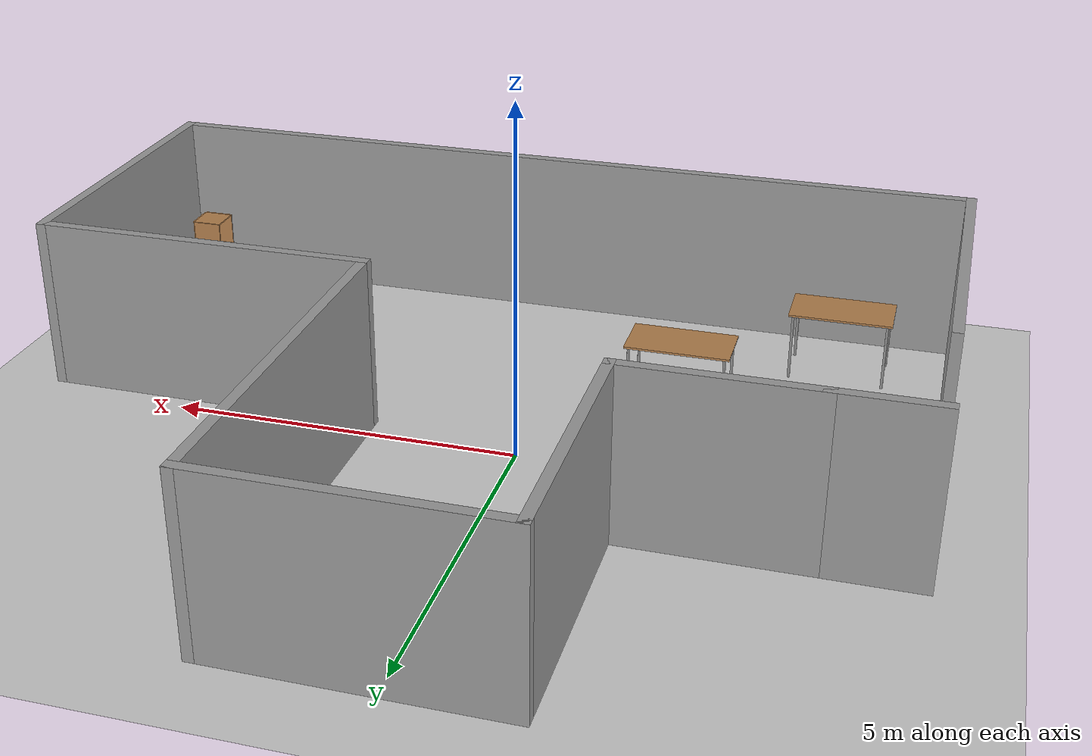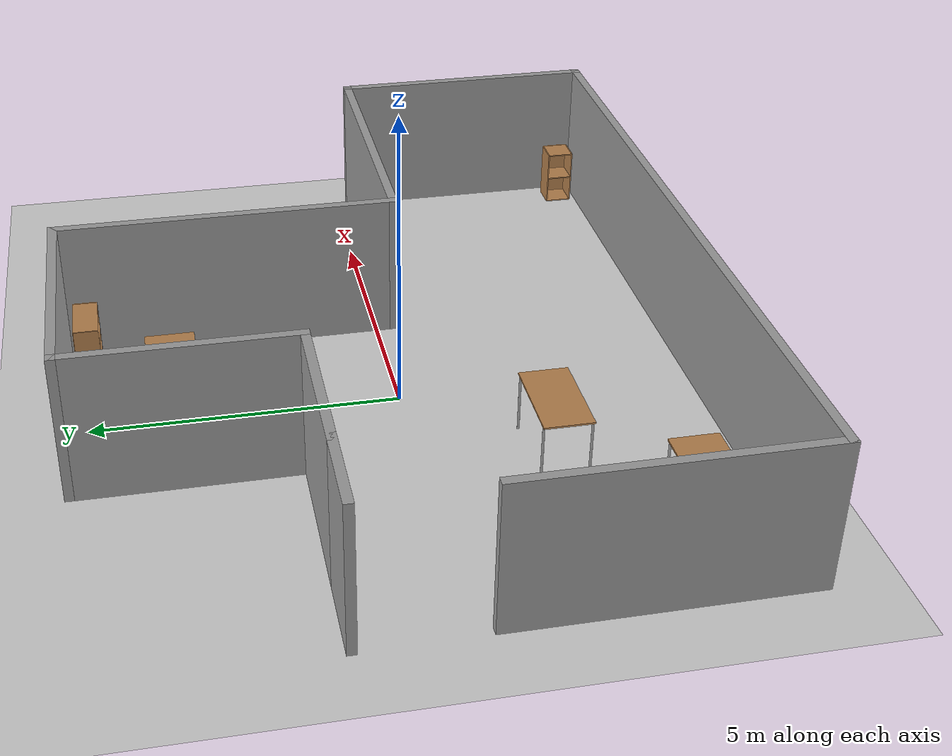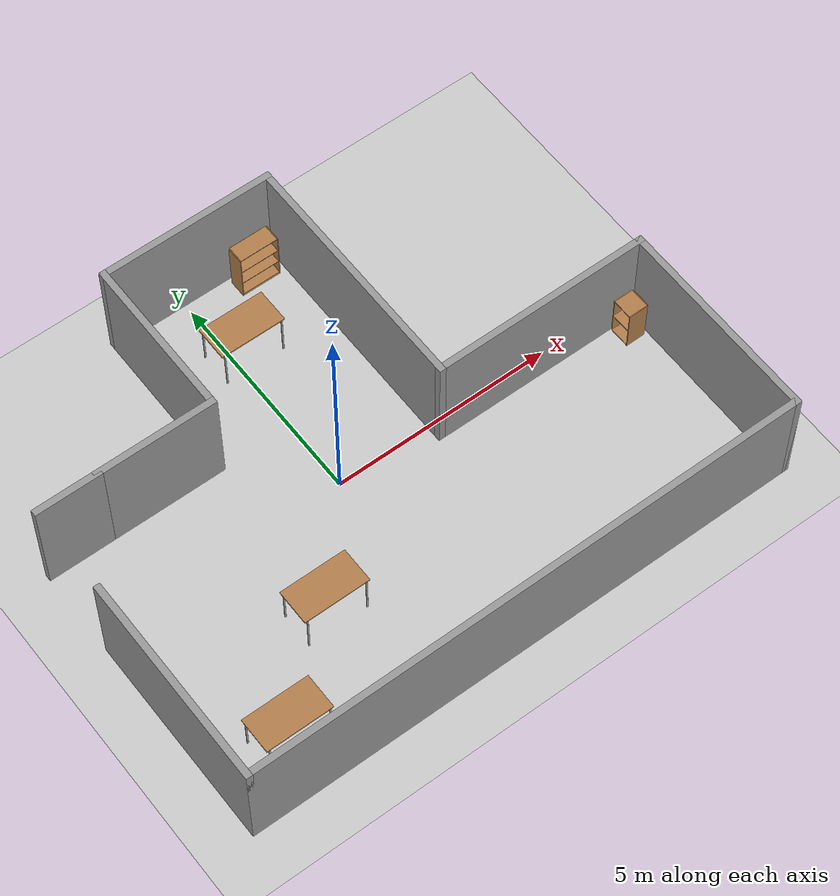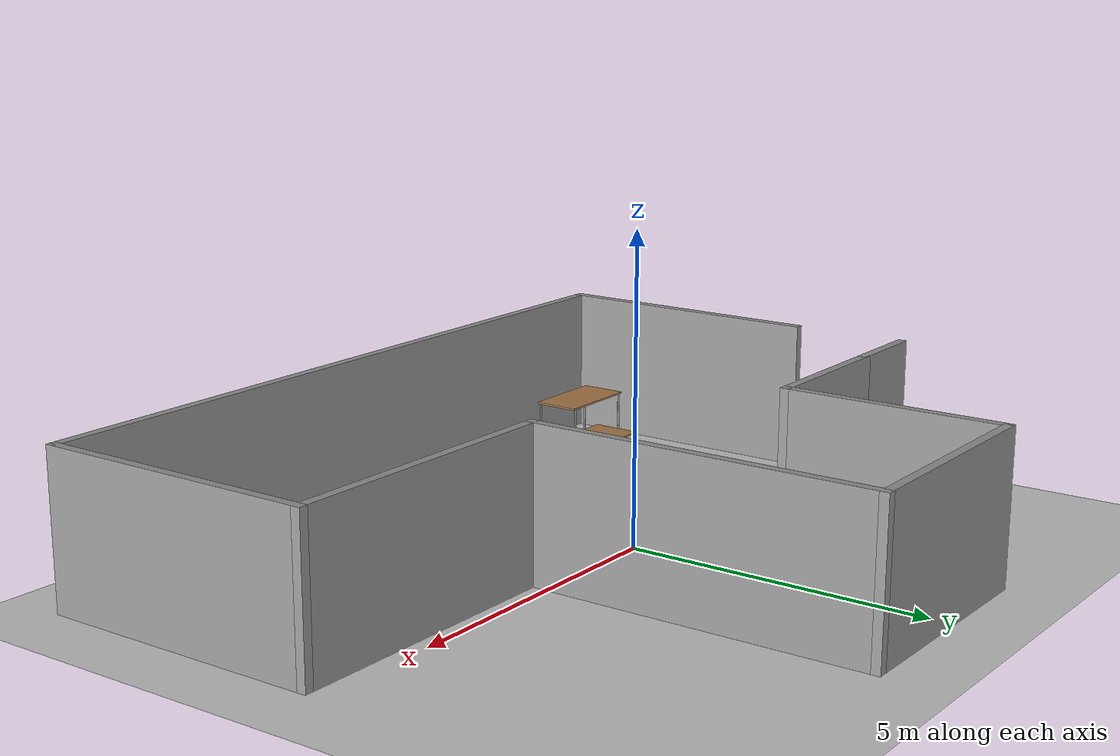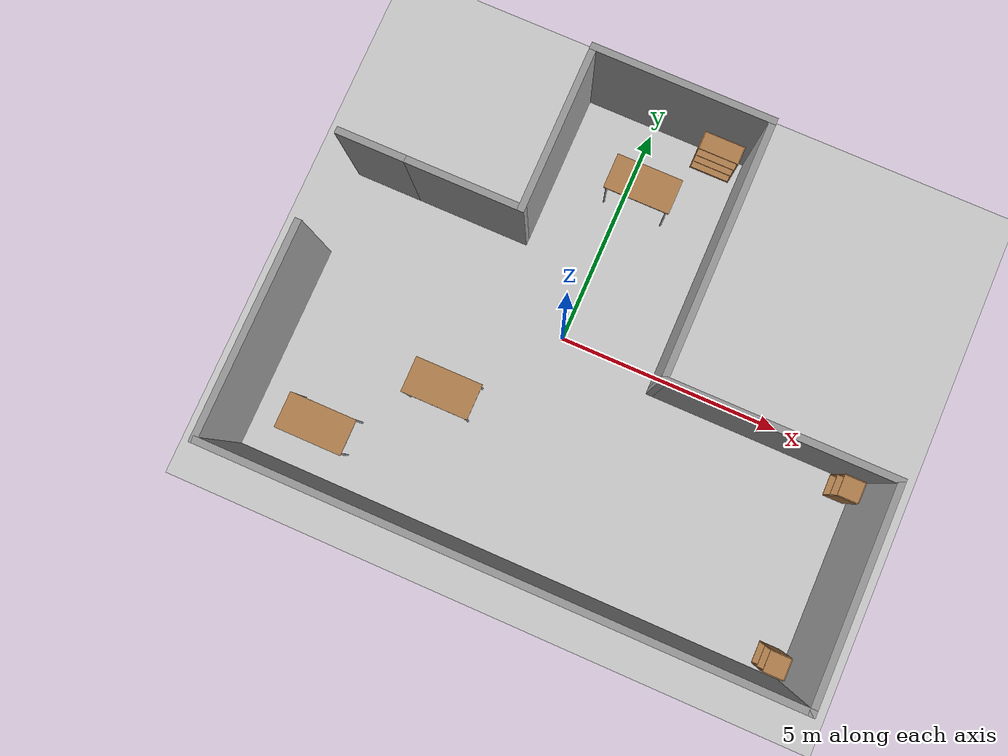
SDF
<sdf version="1.7">
 <world name="default">
  <light name="sun" type="directional">
   <pose>0 0 10 0 -0 0</pose>
   <diffuse>0.8 0.8 0.8 1</diffuse>
   <specular>0.2 0.2 0.2 1</specular>
   <attenuation>
    <range>1000</range>
    <constant>0.9</constant>
    <linear>0.01</linear>
    <quadratic>0.001</quadratic>
   </attenuation>
   <direction>-0.5 0.1 -0.9</direction>
   <spot><inner_angle>0</inner_angle><outer_angle>0</outer_angle><falloff>0</falloff></spot>
  </light>
  <model name="ground_plane">
   <static>1</static>
   <link name="ground_plane_link">
    <collision name="collision">
     <geometry><plane><normal>0 0 1</normal><size>100 100</size></plane></geometry>
     <surface><friction><ode><mu>100</mu><mu2>50</mu2></ode></friction></surface>
    </collision>
    <visual name="visual">
     <cast_shadows>0</cast_shadows>
     <geometry><plane><normal>0 0 1</normal><size>100 100</size></plane></geometry>
     <material>
      <script><uri>file://media/materials/scripts/gazebo.material</uri><name>Gazebo/Grey</name></script>
     </material>
    </visual>
   </link>
  </model>
  <gravity>0 0 -9.8</gravity>
  <magnetic_field>6e-06 2.3e-05 -4.2e-05</magnetic_field>
  <atmosphere type="adiabatic"/>
  <physics type="ode">
   <max_step_size>0.001</max_step_size>
   <real_time_factor>1</real_time_factor>
   <real_time_update_rate>1000</real_time_update_rate>
  </physics>
  <scene><ambient>0.4 0.4 0.4 1</ambient><background>0.7 0.7 0.7 1</background><shadows>1</shadows></scene>
  <audio><device>default</device></audio>
  <spherical_coordinates>
   <surface_model>EARTH_WGS84</surface_model>
   <latitude_deg>0</latitude_deg>
   <longitude_deg>0</longitude_deg>
   <elevation>0</elevation>
   <heading_deg>0</heading_deg>
  </spherical_coordinates>
  <model name="house1">
   <pose>0.75004 0.19 0 0 -0 0</pose>
   <link name="Wall_0">
    <collision name="Wall_0_Collision">
     <geometry><box><size>4.75 0.15 2.5</size></box></geometry>
     <pose>0 0 1.25 0 -0 0</pose>
    </collision>
    <visual name="Wall_0_Visual">
     <pose>0 0 1.25 0 -0 0</pose>
     <geometry><box><size>4.75 0.15 2.5</size></box></geometry>
     <material>
      <script><uri>file://media/materials/scripts/gazebo.material</uri><name>Gazebo/Grey</name></script>
      <ambient>1 1 1 1</ambient>
     </material>
     <meta><layer>0</layer></meta>
    </visual>
    <pose>-6.29004 -2.8 0 0 -0 -1.5708</pose>
   </link>
   <link name="Wall_1">
    <collision name="Wall_1_Collision">
     <geometry><box><size>12.75 0.15 2.5</size></box></geometry>
     <pose>0 0 1.25 0 -0 0</pose>
    </collision>
    <visual name="Wall_1_Visual">
     <pose>0 0 1.25 0 -0 0</pose>
     <geometry><box><size>12.75 0.15 2.5</size></box></geometry>
     <material>
      <script><uri>file://media/materials/scripts/gazebo.material</uri><name>Gazebo/Grey</name></script>
      <ambient>1 1 1 1</ambient>
     </material>
     <meta><layer>0</layer></meta>
    </visual>
    <pose>0.009962 -5.1 0 0 -0 0</pose>
   </link>
   <link name="Wall_2">
    <collision name="Wall_2_Collision">
     <geometry><box><size>4.75 0.15 2.5</size></box></geometry>
     <pose>0 0 1.25 0 -0 0</pose>
    </collision>
    <visual name="Wall_2_Visual">
     <pose>0 0 1.25 0 -0 0</pose>
     <geometry><box><size>4.75 0.15 2.5</size></box></geometry>
     <material>
      <script><uri>file://media/materials/scripts/gazebo.material</uri><name>Gazebo/Grey</name></script>
      <ambient>1 1 1 1</ambient>
     </material>
     <meta><layer>0</layer></meta>
    </visual>
    <pose>6.30996 -2.8 0 0 -0 1.5708</pose>
   </link>
   <link name="Wall_3">
    <collision name="Wall_3_Collision">
     <geometry><box><size>5 0.15 2.5</size></box></geometry>
     <pose>0 0 1.25 0 -0 0</pose>
    </collision>
    <visual name="Wall_3_Visual">
     <pose>0 0 1.25 0 -0 0</pose>
     <geometry><box><size>5 0.15 2.5</size></box></geometry>
     <material>
      <script><uri>file://media/materials/scripts/gazebo.material</uri><name>Gazebo/Grey</name></script>
      <ambient>1 1 1 1</ambient>
     </material>
     <meta><layer>0</layer></meta>
    </visual>
    <pose>3.88496 -0.5 0 0 -0 3.14159</pose>
   </link>
   <link name="Wall_4">
    <collision name="Wall_4_Collision">
     <geometry><box><size>5.75 0.15 2.5</size></box></geometry>
     <pose>0 0 1.25 0 -0 0</pose>
    </collision>
    <visual name="Wall_4_Visual">
     <pose>0 0 1.25 0 -0 0</pose>
     <geometry><box><size>5.75 0.15 2.5</size></box></geometry>
     <material>
      <script><uri>file://media/materials/scripts/gazebo.material</uri><name>Gazebo/Grey</name></script>
      <ambient>1 1 1 1</ambient>
     </material>
     <meta><layer>0</layer></meta>
    </visual>
    <pose>1.45996 2.3 0 0 -0 1.5708</pose>
   </link>
   <link name="Wall_5">
    <collision name="Wall_5_Collision">
     <geometry><box><size>4 0.15 2.5</size></box></geometry>
     <pose>0 0 1.25 0 -0 0</pose>
    </collision>
    <visual name="Wall_5_Visual">
     <pose>0 0 1.25 0 -0 0</pose>
     <geometry><box><size>4 0.15 2.5</size></box></geometry>
     <material>
      <script><uri>file://media/materials/scripts/gazebo.material</uri><name>Gazebo/Grey</name></script>
      <ambient>1 1 1 1</ambient>
     </material>
     <meta><layer>0</layer></meta>
    </visual>
    <pose>-0.465038 5.1 0 0 -0 3.14159</pose>
   </link>
   <link name="Wall_6">
    <collision name="Wall_6_Collision">
     <geometry><box><size>3.75 0.15 2.5</size></box></geometry>
     <pose>0 0 1.25 0 -0 0</pose>
    </collision>
    <visual name="Wall_6_Visual">
     <pose>0 0 1.25 0 -0 0</pose>
     <geometry><box><size>3.75 0.15 2.5</size></box></geometry>
     <material>
      <script><uri>file://media/materials/scripts/gazebo.material</uri><name>Gazebo/Grey</name></script>
      <ambient>1 1 1 1</ambient>
     </material>
     <meta><layer>0</layer></meta>
    </visual>
    <pose>-2.39004 3.3 0 0 -0 -1.5708</pose>
   </link>
   <link name="Wall_7">
    <collision name="Wall_7_Collision">
     <geometry><box><size>2.73496 0.15 2.5</size></box></geometry>
     <pose>0 0 1.25 0 -0 0</pose>
    </collision>
    <visual name="Wall_7_Visual">
     <pose>0 0 1.25 0 -0 0</pose>
     <geometry><box><size>2.73496 0.15 2.5</size></box></geometry>
     <material>
      <script><uri>file://media/materials/scripts/gazebo.material</uri><name>Gazebo/Grey</name></script>
      <ambient>1 1 1 1</ambient>
     </material>
     <meta><layer>0</layer></meta>
    </visual>
    <pose>-3.68252 1.5 0 0 -0 3.14159</pose>
   </link>
   <link name="Wall_8">
    <collision name="Wall_8_Collision">
     <geometry><box><size>1.5 0.15 2.5</size></box></geometry>
     <pose>0 0 1.25 0 -0 0</pose>
    </collision>
    <visual name="Wall_8_Visual">
     <pose>0 0 1.25 0 -0 0</pose>
     <geometry><box><size>1.5 0.15 2.5</size></box></geometry>
     <material>
      <script><uri>file://media/materials/scripts/gazebo.material</uri><name>Gazebo/Grey</name></script>
      <ambient>1 1 1 1</ambient>
     </material>
     <meta><layer>0</layer></meta>
    </visual>
    <pose>-5.63496 1.5 0 0 -0 3.14159</pose>
   </link>
   <static>1</static>
  </model>
  <model name="cabinet">
   <static>1</static>
   <link name="cabinet_bottom_plate">
    <inertial>
     <pose>0 0 -1 0 -0 0</pose>
     <inertia><ixx>2.05</ixx><ixy>0</ixy><ixz>0</ixz><iyy>2.05</iyy><iyz>0</iyz><izz>2.05</izz></inertia>
     <mass>25</mass>
    </inertial>
    <collision name="cabinet_bottom_plate_geom">
     <pose>0 0 0.01 0 -0 0</pose>
     <geometry><box><size>0.45 0.45 0.02</size></box></geometry>
    </collision>
    <visual name="cabinet_bottom_plate_geom_visual">
     <pose>0 0 0.01 0 -0 0</pose>
     <geometry><box><size>0.45 0.45 0.02</size></box></geometry>
     <material>
      <script><uri>file://media/materials/scripts/gazebo.material</uri><name>Gazebo/Wood</name></script>
     </material>
    </visual>
    <collision name="cabinet_bottom_plate_geom_cabinet_back_plate">
     <pose>0.235 0 0.51 0 -0 0</pose>
     <geometry><box><size>0.02 0.45 1.02</size></box></geometry>
    </collision>
    <visual name="cabinet_bottom_plate_geom_cabinet_back_plate_visual">
     <pose>0.235 0 0.51 0 -0 0</pose>
     <geometry><box><size>0.02 0.45 1.02</size></box></geometry>
     <material>
      <script><uri>file://media/materials/scripts/gazebo.material</uri><name>Gazebo/Wood</name></script>
     </material>
    </visual>
    <collision name="cabinet_bottom_plate_geom_cabinet_left_plate">
     <pose>0 0.235 0.51 0 -0 0</pose>
     <geometry><box><size>0.45 0.02 1.02</size></box></geometry>
    </collision>
    <visual name="cabinet_bottom_plate_geom_cabinet_left_plate_visual">
     <pose>0 0.235 0.51 0 -0 0</pose>
     <geometry><box><size>0.45 0.02 1.02</size></box></geometry>
     <material>
      <script><uri>file://media/materials/scripts/gazebo.material</uri><name>Gazebo/Wood</name></script>
     </material>
    </visual>
    <collision name="cabinet_bottom_plate_geom_cabinet_middle_plate">
     <pose>0 0 0.51 0 -0 0</pose>
     <geometry><box><size>0.45 0.45 0.02</size></box></geometry>
    </collision>
    <visual name="cabinet_bottom_plate_geom_cabinet_middle_plate_visual">
     <pose>0 0 0.51 0 -0 0</pose>
     <geometry><box><size>0.45 0.45 0.02</size></box></geometry>
     <material>
      <script><uri>file://media/materials/scripts/gazebo.material</uri><name>Gazebo/Wood</name></script>
     </material>
    </visual>
    <collision name="cabinet_bottom_plate_geom_cabinet_right_plate">
     <pose>0 -0.235 0.51 0 -0 0</pose>
     <geometry><box><size>0.45 0.02 1.02</size></box></geometry>
    </collision>
    <visual name="cabinet_bottom_plate_geom_cabinet_right_plate_visual">
     <pose>0 -0.235 0.51 0 -0 0</pose>
     <geometry><box><size>0.45 0.02 1.02</size></box></geometry>
     <material>
      <script><uri>file://media/materials/scripts/gazebo.material</uri><name>Gazebo/Wood</name></script>
     </material>
    </visual>
    <collision name="cabinet_bottom_plate_geom_cabinet_top_plate">
     <pose>0 0 1.01 0 -0 0</pose>
     <geometry><box><size>0.45 0.45 0.02</size></box></geometry>
    </collision>
    <visual name="cabinet_bottom_plate_geom_cabinet_top_plate_visual">
     <pose>0 0 1.01 0 -0 0</pose>
     <geometry><box><size>0.45 0.45 0.02</size></box></geometry>
     <material>
      <script><uri>file://media/materials/scripts/gazebo.material</uri><name>Gazebo/Wood</name></script>
     </material>
    </visual>
   </link>
   <pose>6.6772 -0.644117 0 0 -0 0</pose>
  </model>
  <model name="table">
   <static>1</static>
   <link name="link">
    <collision name="surface">
     <pose>0 0 1 0 -0 0</pose>
     <geometry><box><size>1.5 0.8 0.03</size></box></geometry>
     <surface><friction><ode><mu>0.6</mu><mu2>0.6</mu2></ode></friction></surface>
    </collision>
    <visual name="visual1">
     <pose>0 0 1 0 -0 0</pose>
     <geometry><box><size>1.5 0.8 0.03</size></box></geometry>
     <material>
      <script><uri>file://media/materials/scripts/gazebo.material</uri><name>Gazebo/Wood</name></script>
     </material>
    </visual>
    <collision name="front_left_leg">
     <pose>0.68 0.38 0.5 0 -0 0</pose>
     <geometry><cylinder><radius>0.02</radius><length>1</length></cylinder></geometry>
    </collision>
    <visual name="front_left_leg">
     <pose>0.68 0.38 0.5 0 -0 0</pose>
     <geometry><cylinder><radius>0.02</radius><length>1</length></cylinder></geometry>
     <material>
      <script><uri>file://media/materials/scripts/gazebo.material</uri><name>Gazebo/Grey</name></script>
     </material>
    </visual>
    <collision name="front_right_leg">
     <pose>0.68 -0.38 0.5 0 -0 0</pose>
     <geometry><cylinder><radius>0.02</radius><length>1</length></cylinder></geometry>
    </collision>
    <visual name="front_right_leg">
     <pose>0.68 -0.38 0.5 0 -0 0</pose>
     <geometry><cylinder><radius>0.02</radius><length>1</length></cylinder></geometry>
     <material>
      <script><uri>file://media/materials/scripts/gazebo.material</uri><name>Gazebo/Grey</name></script>
     </material>
    </visual>
    <collision name="back_right_leg">
     <pose>-0.68 -0.38 0.5 0 -0 0</pose>
     <geometry><cylinder><radius>0.02</radius><length>1</length></cylinder></geometry>
    </collision>
    <visual name="back_right_leg">
     <pose>-0.68 -0.38 0.5 0 -0 0</pose>
     <geometry><cylinder><radius>0.02</radius><length>1</length></cylinder></geometry>
     <material>
      <script><uri>file://media/materials/scripts/gazebo.material</uri><name>Gazebo/Grey</name></script>
     </material>
    </visual>
    <collision name="back_left_leg">
     <pose>-0.68 0.38 0.5 0 -0 0</pose>
     <geometry><cylinder><radius>0.02</radius><length>1</length></cylinder></geometry>
    </collision>
    <visual name="back_left_leg">
     <pose>-0.68 0.38 0.5 0 -0 0</pose>
     <geometry><cylinder><radius>0.02</radius><length>1</length></cylinder></geometry>
     <material>
      <script><uri>file://media/materials/scripts/gazebo.material</uri><name>Gazebo/Grey</name></script>
     </material>
    </visual>
   </link>
   <pose>0.298455 3.58978 0 0 -0 0</pose>
  </model>
  <model name="table_0">
   <static>1</static>
   <link name="link">
    <collision name="surface">
     <pose>0 0 1 0 -0 0</pose>
     <geometry><box><size>1.5 0.8 0.03</size></box></geometry>
     <surface><friction><ode><mu>0.6</mu><mu2>0.6</mu2></ode></friction></surface>
    </collision>
    <visual name="visual1">
     <pose>0 0 1 0 -0 0</pose>
     <geometry><box><size>1.5 0.8 0.03</size></box></geometry>
     <material>
      <script><uri>file://media/materials/scripts/gazebo.material</uri><name>Gazebo/Wood</name></script>
     </material>
    </visual>
    <collision name="front_left_leg">
     <pose>0.68 0.38 0.5 0 -0 0</pose>
     <geometry><cylinder><radius>0.02</radius><length>1</length></cylinder></geometry>
    </collision>
    <visual name="front_left_leg">
     <pose>0.68 0.38 0.5 0 -0 0</pose>
     <geometry><cylinder><radius>0.02</radius><length>1</length></cylinder></geometry>
     <material>
      <script><uri>file://media/materials/scripts/gazebo.material</uri><name>Gazebo/Grey</name></script>
     </material>
    </visual>
    <collision name="front_right_leg">
     <pose>0.68 -0.38 0.5 0 -0 0</pose>
     <geometry><cylinder><radius>0.02</radius><length>1</length></cylinder></geometry>
    </collision>
    <visual name="front_right_leg">
     <pose>0.68 -0.38 0.5 0 -0 0</pose>
     <geometry><cylinder><radius>0.02</radius><length>1</length></cylinder></geometry>
     <material>
      <script><uri>file://media/materials/scripts/gazebo.material</uri><name>Gazebo/Grey</name></script>
     </material>
    </visual>
    <collision name="back_right_leg">
     <pose>-0.68 -0.38 0.5 0 -0 0</pose>
     <geometry><cylinder><radius>0.02</radius><length>1</length></cylinder></geometry>
    </collision>
    <visual name="back_right_leg">
     <pose>-0.68 -0.38 0.5 0 -0 0</pose>
     <geometry><cylinder><radius>0.02</radius><length>1</length></cylinder></geometry>
     <material>
      <script><uri>file://media/materials/scripts/gazebo.material</uri><name>Gazebo/Grey</name></script>
     </material>
    </visual>
    <collision name="back_left_leg">
     <pose>-0.68 0.38 0.5 0 -0 0</pose>
     <geometry><cylinder><radius>0.02</radius><length>1</length></cylinder></geometry>
    </collision>
    <visual name="back_left_leg">
     <pose>-0.68 0.38 0.5 0 -0 0</pose>
     <geometry><cylinder><radius>0.02</radius><length>1</length></cylinder></geometry>
     <material>
      <script><uri>file://media/materials/scripts/gazebo.material</uri><name>Gazebo/Grey</name></script>
     </material>
    </visual>
   </link>
   <pose>-3.92586 -3.77916 0 0 -0 0</pose>
  </model>
  <model name="cabinet_0">
   <static>1</static>
   <link name="cabinet_bottom_plate">
    <inertial>
     <pose>0 0 -1 0 -0 0</pose>
     <inertia><ixx>2.05</ixx><ixy>0</ixy><ixz>0</ixz><iyy>2.05</iyy><iyz>0</iyz><izz>2.05</izz></inertia>
     <mass>25</mass>
    </inertial>
    <collision name="cabinet_bottom_plate_geom">
     <pose>0 0 0.01 0 -0 0</pose>
     <geometry><box><size>0.45 0.45 0.02</size></box></geometry>
    </collision>
    <visual name="cabinet_bottom_plate_geom_visual">
     <pose>0 0 0.01 0 -0 0</pose>
     <geometry><box><size>0.45 0.45 0.02</size></box></geometry>
     <material>
      <script><uri>file://media/materials/scripts/gazebo.material</uri><name>Gazebo/Wood</name></script>
     </material>
    </visual>
    <collision name="cabinet_bottom_plate_geom_cabinet_back_plate">
     <pose>0.235 0 0.51 0 -0 0</pose>
     <geometry><box><size>0.02 0.45 1.02</size></box></geometry>
    </collision>
    <visual name="cabinet_bottom_plate_geom_cabinet_back_plate_visual">
     <pose>0.235 0 0.51 0 -0 0</pose>
     <geometry><box><size>0.02 0.45 1.02</size></box></geometry>
     <material>
      <script><uri>file://media/materials/scripts/gazebo.material</uri><name>Gazebo/Wood</name></script>
     </material>
    </visual>
    <collision name="cabinet_bottom_plate_geom_cabinet_left_plate">
     <pose>0 0.235 0.51 0 -0 0</pose>
     <geometry><box><size>0.45 0.02 1.02</size></box></geometry>
    </collision>
    <visual name="cabinet_bottom_plate_geom_cabinet_left_plate_visual">
     <pose>0 0.235 0.51 0 -0 0</pose>
     <geometry><box><size>0.45 0.02 1.02</size></box></geometry>
     <material>
      <script><uri>file://media/materials/scripts/gazebo.material</uri><name>Gazebo/Wood</name></script>
     </material>
    </visual>
    <collision name="cabinet_bottom_plate_geom_cabinet_middle_plate">
     <pose>0 0 0.51 0 -0 0</pose>
     <geometry><box><size>0.45 0.45 0.02</size></box></geometry>
    </collision>
    <visual name="cabinet_bottom_plate_geom_cabinet_middle_plate_visual">
     <pose>0 0 0.51 0 -0 0</pose>
     <geometry><box><size>0.45 0.45 0.02</size></box></geometry>
     <material>
      <script><uri>file://media/materials/scripts/gazebo.material</uri><name>Gazebo/Wood</name></script>
     </material>
    </visual>
    <collision name="cabinet_bottom_plate_geom_cabinet_right_plate">
     <pose>0 -0.235 0.51 0 -0 0</pose>
     <geometry><box><size>0.45 0.02 1.02</size></box></geometry>
    </collision>
    <visual name="cabinet_bottom_plate_geom_cabinet_right_plate_visual">
     <pose>0 -0.235 0.51 0 -0 0</pose>
     <geometry><box><size>0.45 0.02 1.02</size></box></geometry>
     <material>
      <script><uri>file://media/materials/scripts/gazebo.material</uri><name>Gazebo/Wood</name></script>
     </material>
    </visual>
    <collision name="cabinet_bottom_plate_geom_cabinet_top_plate">
     <pose>0 0 1.01 0 -0 0</pose>
     <geometry><box><size>0.45 0.45 0.02</size></box></geometry>
    </collision>
    <visual name="cabinet_bottom_plate_geom_cabinet_top_plate_visual">
     <pose>0 0 1.01 0 -0 0</pose>
     <geometry><box><size>0.45 0.45 0.02</size></box></geometry>
     <material>
      <script><uri>file://media/materials/scripts/gazebo.material</uri><name>Gazebo/Wood</name></script>
     </material>
    </visual>
   </link>
   <pose>6.58094 -4.49075 0 0 -0 0</pose>
  </model>
  <model name="bookshelf">
   <static>1</static>
   <link name="link">
    <inertial><mass>1</mass></inertial>
    <collision name="back">
     <pose>0 0.005 0.6 0 -0 0</pose>
     <geometry><box><size>0.9 0.01 1.2</size></box></geometry>
    </collision>
    <visual name="visual1">
     <pose>0 0.005 0.6 0 -0 0</pose>
     <geometry><box><size>0.9 0.01 1.2</size></box></geometry>
     <material>
      <script><uri>file://media/materials/scripts/gazebo.material</uri><name>Gazebo/Wood</name></script>
     </material>
    </visual>
    <collision name="left_side">
     <pose>0.45 -0.195 0.6 0 -0 0</pose>
     <geometry><box><size>0.02 0.4 1.2</size></box></geometry>
    </collision>
    <visual name="visual2">
     <pose>0.45 -0.195 0.6 0 -0 0</pose>
     <geometry><box><size>0.02 0.4 1.2</size></box></geometry>
     <material>
      <script><uri>file://media/materials/scripts/gazebo.material</uri><name>Gazebo/Wood</name></script>
     </material>
    </visual>
    <collision name="right_side">
     <pose>-0.45 -0.195 0.6 0 -0 0</pose>
     <geometry><box><size>0.02 0.4 1.2</size></box></geometry>
    </collision>
    <visual name="visual3">
     <pose>-0.45 -0.195 0.6 0 -0 0</pose>
     <geometry><box><size>0.02 0.4 1.2</size></box></geometry>
     <material>
      <script><uri>file://media/materials/scripts/gazebo.material</uri><name>Gazebo/Wood</name></script>
     </material>
    </visual>
    <collision name="bottom">
     <pose>0 -0.195 0.03 0 -0 0</pose>
     <geometry><box><size>0.88 0.4 0.06</size></box></geometry>
    </collision>
    <visual name="visual4">
     <pose>0 -0.195 0.03 0 -0 0</pose>
     <geometry><box><size>0.88 0.4 0.06</size></box></geometry>
     <material>
      <script><uri>file://media/materials/scripts/gazebo.material</uri><name>Gazebo/Wood</name></script>
     </material>
    </visual>
    <collision name="top">
     <pose>0 -0.195 1.19 0 -0 0</pose>
     <geometry><box><size>0.88 0.4 0.02</size></box></geometry>
    </collision>
    <visual name="visual5">
     <pose>0 -0.195 1.19 0 -0 0</pose>
     <geometry><box><size>0.88 0.4 0.02</size></box></geometry>
     <material>
      <script><uri>file://media/materials/scripts/gazebo.material</uri><name>Gazebo/Wood</name></script>
     </material>
    </visual>
    <collision name="low_shelf">
     <pose>0 -0.195 0.43 0 -0 0</pose>
     <geometry><box><size>0.88 0.4 0.02</size></box></geometry>
    </collision>
    <visual name="visual6">
     <pose>0 -0.195 0.43 0 -0 0</pose>
     <geometry><box><size>0.88 0.4 0.02</size></box></geometry>
     <material>
      <script><uri>file://media/materials/scripts/gazebo.material</uri><name>Gazebo/Wood</name></script>
     </material>
    </visual>
    <collision name="high_shelf">
     <pose>0 -0.195 0.8 0 -0 0</pose>
     <geometry><box><size>0.88 0.4 0.02</size></box></geometry>
    </collision>
    <visual name="visual7">
     <pose>0 -0.195 0.8 0 -0 0</pose>
     <geometry><box><size>0.88 0.4 0.02</size></box></geometry>
     <material>
      <script><uri>file://media/materials/scripts/gazebo.material</uri><name>Gazebo/Wood</name></script>
     </material>
    </visual>
   </link>
   <pose>1.5251 5.10257 0 0 -0 0</pose>
  </model>
  <model name="table_1">
   <static>1</static>
   <link name="link">
    <collision name="surface">
     <pose>0 0 1 0 -0 0</pose>
     <geometry><box><size>1.5 0.8 0.03</size></box></geometry>
     <surface><friction><ode><mu>0.6</mu><mu2>0.6</mu2></ode></friction></surface>
    </collision>
    <visual name="visual1">
     <pose>0 0 1 0 -0 0</pose>
     <geometry><box><size>1.5 0.8 0.03</size></box></geometry>
     <material>
      <script><uri>file://media/materials/scripts/gazebo.material</uri><name>Gazebo/Wood</name></script>
     </material>
    </visual>
    <collision name="front_left_leg">
     <pose>0.68 0.38 0.5 0 -0 0</pose>
     <geometry><cylinder><radius>0.02</radius><length>1</length></cylinder></geometry>
    </collision>
    <visual name="front_left_leg">
     <pose>0.68 0.38 0.5 0 -0 0</pose>
     <geometry><cylinder><radius>0.02</radius><length>1</length></cylinder></geometry>
     <material>
      <script><uri>file://media/materials/scripts/gazebo.material</uri><name>Gazebo/Grey</name></script>
     </material>
    </visual>
    <collision name="front_right_leg">
     <pose>0.68 -0.38 0.5 0 -0 0</pose>
     <geometry><cylinder><radius>0.02</radius><length>1</length></cylinder></geometry>
    </collision>
    <visual name="front_right_leg">
     <pose>0.68 -0.38 0.5 0 -0 0</pose>
     <geometry><cylinder><radius>0.02</radius><length>1</length></cylinder></geometry>
     <material>
      <script><uri>file://media/materials/scripts/gazebo.material</uri><name>Gazebo/Grey</name></script>
     </material>
    </visual>
    <collision name="back_right_leg">
     <pose>-0.68 -0.38 0.5 0 -0 0</pose>
     <geometry><cylinder><radius>0.02</radius><length>1</length></cylinder></geometry>
    </collision>
    <visual name="back_right_leg">
     <pose>-0.68 -0.38 0.5 0 -0 0</pose>
     <geometry><cylinder><radius>0.02</radius><length>1</length></cylinder></geometry>
     <material>
      <script><uri>file://media/materials/scripts/gazebo.material</uri><name>Gazebo/Grey</name></script>
     </material>
    </visual>
    <collision name="back_left_leg">
     <pose>-0.68 0.38 0.5 0 -0 0</pose>
     <geometry><cylinder><radius>0.02</radius><length>1</length></cylinder></geometry>
    </collision>
    <visual name="back_left_leg">
     <pose>-0.68 0.38 0.5 0 -0 0</pose>
     <geometry><cylinder><radius>0.02</radius><length>1</length></cylinder></geometry>
     <material>
      <script><uri>file://media/materials/scripts/gazebo.material</uri><name>Gazebo/Grey</name></script>
     </material>
    </visual>
   </link>
   <pose>-1.84069 -2.07836 0 0 -0 0</pose>
  </model>
 </world>
</sdf>
